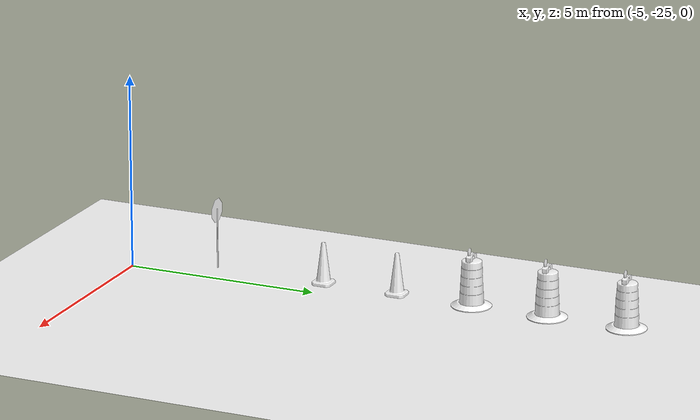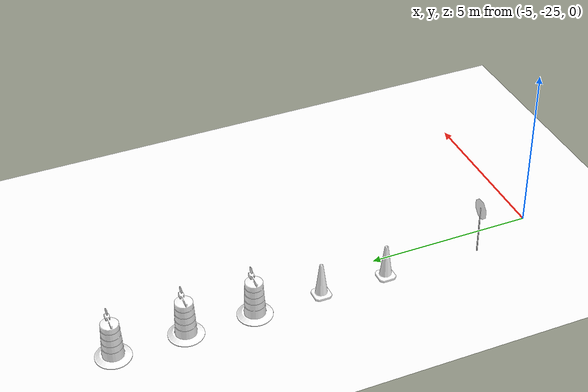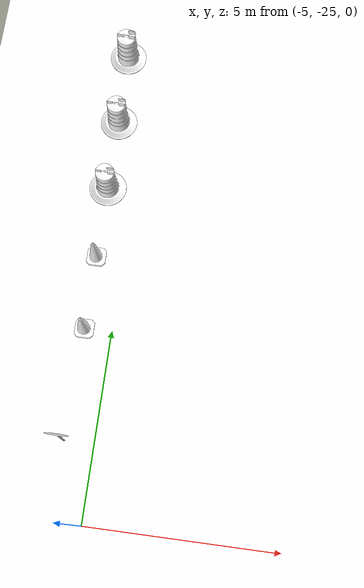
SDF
<sdf version='1.10'>
  <world name='IGVC_AutoNav'>
    <plugin name='gz::sim::systems::Physics' filename='gz-sim-physics-system'/>
    <plugin name='gz::sim::systems::UserCommands' filename='gz-sim-user-commands-system'/>
    <plugin name='gz::sim::systems::SceneBroadcaster' filename='gz-sim-scene-broadcaster-system'/>
    <plugin name='gz::sim::systems::Contact' filename='gz-sim-contact-system'/>
    <plugin name='gz::sim::systems::NavSat' filename='gz-sim-navsat-system'/>
    <spherical_coordinates>
      <surface_model>EARTH_WGS84</surface_model>
      <world_frame_orientation>ENU</world_frame_orientation>
      <latitude_deg>47.478949999999998</latitude_deg>
      <longitude_deg>19.057784999999999</longitude_deg>
      <elevation>0</elevation>
      <heading_deg>0</heading_deg>
    </spherical_coordinates>
    <plugin name='gz::sim::systems::Sensors' filename='gz-sim-sensors-system'>
      <render_engine>ogre2</render_engine>
    </plugin>
    <plugin name='gz::sim::systems::Imu' filename='gz-sim-imu-system'/>
    <plugin name='gz::sim::systems::NavSat' filename='gz-sim-navsat-system'/>
    <gravity>0 0 -9.8000000000000007</gravity>
    <magnetic_field>6.0000000000000002e-06 2.3e-05 -4.1999999999999998e-05</magnetic_field>
    <atmosphere type='adiabatic'/>
    <physics type='ode'>
      <max_step_size>0.001</max_step_size>
      <real_time_factor>1</real_time_factor>
      <real_time_update_rate>1000</real_time_update_rate>
    </physics>
    <scene>
      <ambient>0.400000006 0.400000006 0.400000006 1</ambient>
      <background>0.699999988 0.699999988 0.699999988 1</background>
      <shadows>true</shadows>
    </scene>
    <wind/>
    <spherical_coordinates>
      <surface_model>EARTH_WGS84</surface_model>
      <latitude_deg>0</latitude_deg>
      <longitude_deg>0</longitude_deg>
      <elevation>0</elevation>
      <heading_deg>0</heading_deg>
    </spherical_coordinates>
    <gui fullscreen='false'>
      <camera name='user_camera'>
        <pose>5.5319000000000003 -9.7176899999999993 6.8489500000000003 2.9459705656237252e-17 0.34179700000000024 0.53604000000000018</pose>
        <view_controller>orbit</view_controller>
        <projection_type>perspective</projection_type>
      </camera>
    </gui>
    <include>
      <uri>model://asphalt_ground_plane</uri>
      <name>ground_plane</name>
      <pose>0 0 0 0 0 0</pose>
    </include>
    <include>
      <uri>model://construction_barrel</uri>
      <name>barrel_0</name>
      <pose>-5.7300000000000004 -14.029999999999999 -1.8856596816982373e-11 1.0471999161670388e-11 -1.2150535035744508e-11 4.9498205335107352e-19</pose>
    </include>
    <include>
      <uri>model://construction_barrel</uri>
      <name>barrel_1</name>
      <pose>-5.7300000000000004 -16.029999999999998 -1.8856596820451821e-11 1.0471999164756963e-11 -1.2150535036207485e-11 4.9452255730010597e-19</pose>
    </include>
    <include>
      <uri>model://construction_cone</uri>
      <name>cone_0</name>
      <pose>-5.7300000000000004 -18.029999999999998 -1.3379350698519699e-11 9.2157184661267884e-22 -2.4394548880923853e-22 -1.1240664729738127e-43</pose>
    </include>
    <include>
      <uri>model://construction_cone</uri>
      <name>cone_1</name>
      <pose>-5.7300000000000004 -20.029999999999998 -1.3379350696784975e-11 2.0599841277224584e-21 -1.8973538018496329e-21 -1.954259358242053e-42</pose>
    </include>
    <include>
      <uri>model://construction_barrel</uri>
      <name>barrel_0_1</name>
      <pose>-5.7623201613346104 -11.978818089477544 -3.7185658746663463e-11 1.6138710734766828e-11 -2.4366339675231339e-11 8.4312385713728737e-19</pose>
    </include>
    <include>
      <uri>model://stop_sign</uri>
      <name>stop_sign_1</name>
      <pose>-5.7623201613346104 -22.978818089477544 -3.7185658746663463e-11 1.6138710734766828e-11 -2.4366339675231339e-11 8.4312385713728737e-19</pose>
    </include>
    <light name='sun' type='directional'>
      <pose>0 0 10 0 0 0</pose>
      <cast_shadows>true</cast_shadows>
      <intensity>1</intensity>
      <direction>-0.5 0.10000000000000001 -0.90000000000000002</direction>
      <diffuse>0.800000012 0.800000012 0.800000012 1</diffuse>
      <specular>0.200000003 0.200000003 0.200000003 1</specular>
      <attenuation>
        <range>1000</range>
        <linear>0.01</linear>
        <constant>0.90000000000000002</constant>
        <quadratic>0.001</quadratic>
      </attenuation>
      <spot>
        <inner_angle>0</inner_angle>
        <outer_angle>0</outer_angle>
        <falloff>0</falloff>
      </spot>
    </light>
  </world>
</sdf>

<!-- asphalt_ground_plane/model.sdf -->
<sdf version="1.10">
  <model name="asphalt_ground_plane">
    <static>true</static>
    <link name="link">
      <!-- keep local pose on the link -->
      <pose>0 0 0 0 0 0</pose>

      <!-- inertial -->
      <inertial>
        <pose>0 0 0 0 0 0</pose>
        <mass>1</mass>
        <inertia>
          <ixx>1</ixx>
          <ixy>0</ixy>
          <ixz>0</ixz>
          <iyy>1</iyy>
          <iyz>0</iyz>
          <izz>1</izz>
        </inertia>
      </inertial>

      <!-- collision -->
      <collision name="collision">
        <geometry>
          <plane>
            <normal>0 0 1</normal>
            <size>64.748999999999995 67.341999999999999</size>
          </plane>
        </geometry>
        <max_contacts>10</max_contacts>
        <surface>
          <friction>
            <ode>
              <mu>100</mu>
              <mu2>50</mu2>
            </ode>
            <torsional>
              <ode />
            </torsional>
          </friction>
          <contact>
            <ode />
          </contact>
          <bounce />
        </surface>
      </collision>

      <!-- visual -->
      <visual name="visual">
        <cast_shadows>false</cast_shadows>
        <geometry>
          <plane>
            <normal>0 0 1</normal>
            <size>64.748999999999995 67.341999999999999</size>
          </plane>
        </geometry>
        <material>
          <diffuse>1 1 1 1</diffuse>
          <specular>1 1 1 1</specular>
          <pbr>
            <metal>
              <albedo_map>file://media/materials/textures/better_lanes.png</albedo_map>
            </metal>
          </pbr>
        </material>
      </visual>

      <self_collide>false</self_collide>
      <enable_wind>false</enable_wind>
      <kinematic>false</kinematic>
    </link>
  </model>
</sdf>

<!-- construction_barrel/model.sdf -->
<sdf version="1.10">
  <model name="construction_barrel">
    <static>false</static>
    <link name="link">
      <pose>0 0 0 0 0 0</pose>

      <inertial>
        <pose>0 0 0.40000000000000002 0 0 0</pose>
        <mass>500</mass>
        <inertia>
          <ixx>51.209600000000002</ixx>
          <iyy>51.209600000000002</iyy>
          <izz>25</izz>
          <ixy>0</ixy>
          <ixz>0</ixz>
          <iyz>0</iyz>
        </inertia>
      </inertial>

      <collision name="collision">
        <geometry>
          <mesh>
            <uri>model://construction_barrel/meshes/construction_barrel.dae</uri>
          </mesh>
        </geometry>
        <max_contacts>10</max_contacts>
        <surface>
          <contact>
            <ode/>
          </contact>
          <bounce/>
          <friction>
            <torsional>
              <ode/>
            </torsional>
            <ode/>
          </friction>
        </surface>
      </collision>

      <visual name="visual">
        <geometry>
          <mesh>
            <uri>model://construction_barrel/meshes/construction_barrel.dae</uri>
          </mesh>
        </geometry>
        <material>
          <ambient>1 1 1 1</ambient>
          <diffuse>1 1 1 1</diffuse>
          <pbr>
            <metal>
              <albedo_map>file://model://construction_barrel/materials/textures/Construction_Barrel_Diffuse.png</albedo_map>
              <roughness>0.75</roughness>
              <metalness>0.0</metalness>
            </metal>
          </pbr>
        </material>
      </visual>

      <self_collide>false</self_collide>
      <enable_wind>false</enable_wind>
      <kinematic>false</kinematic>
    </link>
  </model>
</sdf>

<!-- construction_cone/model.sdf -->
<sdf version="1.10">
  <model name="construction_cone">
    <static>false</static>

    <link name="link">
      <!-- local pose -->
      <pose>0 0 0 0 0 0</pose>

      <!-- inertia -->
      <inertial>
        <pose>0 0 0 0 0 0</pose>
        <mass>1</mass>
        <inertia>
          <ixx>1</ixx>
          <ixy>0</ixy>
          <ixz>0</ixz>
          <iyy>1</iyy>
          <iyz>0</iyz>
          <izz>1</izz>
        </inertia>
      </inertial>

      <!-- collision -->
      <collision name="collision">
        <geometry>
          <mesh>
            <scale>10 10 10</scale>
            <uri>model://construction_cone/meshes/construction_cone.dae</uri>
          </mesh>
        </geometry>
        <max_contacts>10</max_contacts>
        <surface>
          <contact><ode/></contact>
          <bounce/>
          <friction>
            <torsional><ode/></torsional>
            <ode/>
          </friction>
        </surface>
      </collision>

      <!-- visual -->
      <visual name="visual">
        <geometry>
          <mesh>
            <scale>10 10 10</scale>
            <uri>model://construction_cone/meshes/construction_cone.dae</uri>
          </mesh>
        </geometry>
        <material>
          <ambient>1 1 1 1</ambient>
          <diffuse>1 1 1 1</diffuse>
          <pbr>
            <metal>
              <albedo_map>file://model://construction_cone/materials/textures/Construction_Cone_Diffuse.png</albedo_map>
              <roughness>0.75</roughness>
              <metalness>0.0</metalness>
            </metal>
          </pbr>
        </material>
      </visual>

      <self_collide>false</self_collide>
      <enable_wind>false</enable_wind>
      <kinematic>false</kinematic>
    </link>

  </model>
</sdf>

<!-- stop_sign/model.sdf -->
<sdf version="1.10">
  <model name="stop_sign">
    <static>false</static>
    <link name="link">
      <pose>0 0 0 0 0 0</pose>

      <inertial>
        <pose>0 0 -0.40000000000000002 0 0 0</pose>
        <mass>500</mass>
        <inertia>
          <ixx>51.209600000000002</ixx>
          <iyy>51.209600000000002</iyy>
          <izz>25</izz>
          <ixy>0</ixy>
          <ixz>0</ixz>
          <iyz>0</iyz>
        </inertia>
      </inertial>

      <collision name="collision">
        <geometry>
          <mesh>
            <uri>model://stop_sign/meshes/stop_sign.dae</uri>
          </mesh>
        </geometry>
        <max_contacts>10</max_contacts>
        <surface>
          <contact><ode/></contact>
          <bounce/>
          <friction>
            <torsional><ode/></torsional>
            <ode/>
          </friction>
        </surface>
      </collision>

      <visual name="visual">
        <geometry>
          <mesh>
            <uri>model://stop_sign/meshes/stop_sign.dae</uri>
          </mesh>
        </geometry>
        <material>
          <ambient>1 1 1 1</ambient>
          <diffuse>1 1 1 1</diffuse>
          <emissive>0.1 0 0 0.1</emissive>
          <pbr>
            <metal>
              <albedo_map>file://model://stop_sign/materials/textures/StopSignDiffuse.png</albedo_map>
              <roughness>0.75</roughness>
              <metalness>0.0</metalness>
            </metal>
          </pbr>
        </material>
      </visual>

      <self_collide>false</self_collide>
      <enable_wind>false</enable_wind>
      <kinematic>false</kinematic>
    </link>
  </model>
</sdf>
